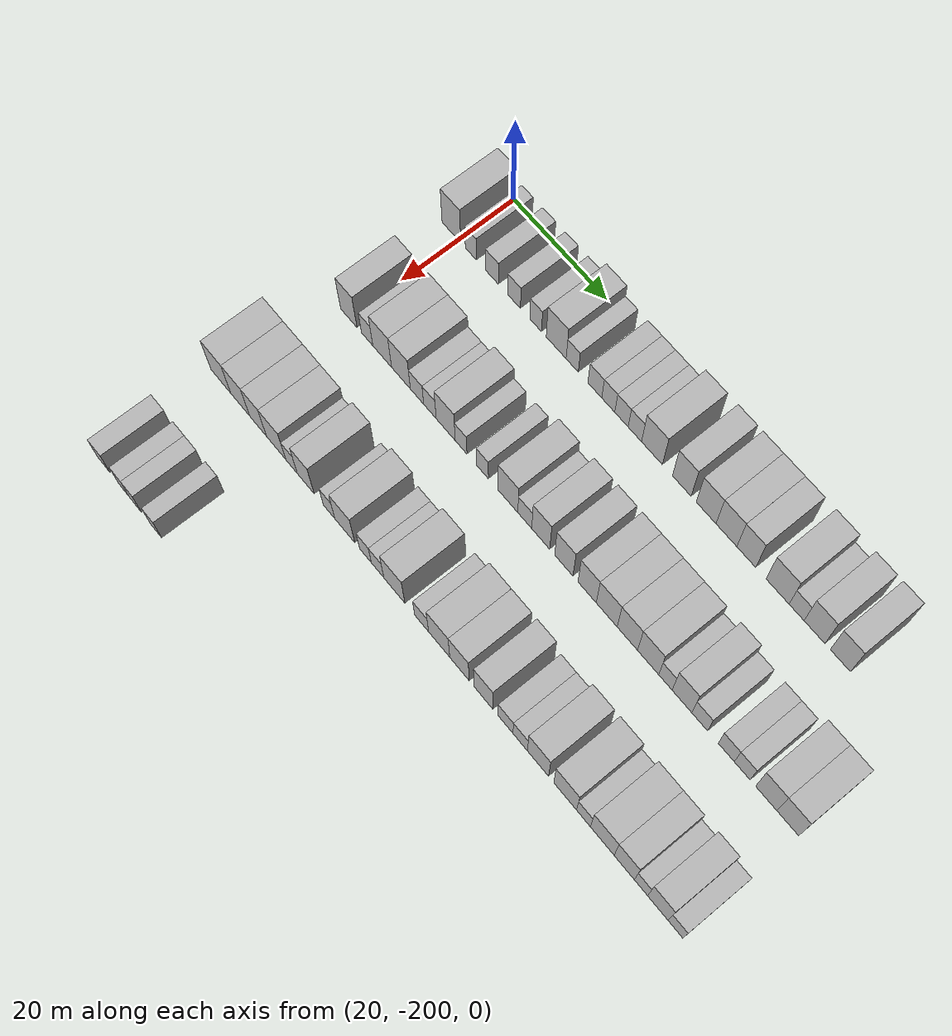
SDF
<sdf version="1.6">
 <world name="default">
  <model name="building_37">
   <static>1</static>
   <pose>25.0000 -201.5024 0 0.000000 0.000000 0.000000</pose>
   <link name="link">
    <pose>0 0 4.50 0 0 0</pose>
    <collision name="collision"><geometry><box><size>10.0000 4.1393 9.0000</size></box></geometry></collision>
    <visual name="visual">
     <cast_shadows>0</cast_shadows>
     <geometry><box><size>10.0000 4.1393 9.0000</size></box></geometry>
     <material>
      <script>
       <uri>model://HANNAS_wall/materials/scripts</uri>
       <uri>model://HANNAS_wall/materials/textures</uri>
       <name>vrc/HANNAS_wall</name>
      </script>
     </material>
    </visual>
   </link>
  </model>
  <model name="building_38">
   <static>1</static>
   <pose>25.0000 -197.2119 0 0.000000 0.000000 0.000000</pose>
   <link name="link">
    <pose>0 0 3.00 0 0 0</pose>
    <collision name="collision"><geometry><box><size>10.0000 2.4417 6.0000</size></box></geometry></collision>
    <visual name="visual">
     <cast_shadows>0</cast_shadows>
     <geometry><box><size>10.0000 2.4417 6.0000</size></box></geometry>
     <material>
      <script>
       <uri>model://HANNAS_wall/materials/scripts</uri>
       <uri>model://HANNAS_wall/materials/textures</uri>
       <name>vrc/HANNAS_wall</name>
      </script>
     </material>
    </visual>
   </link>
  </model>
  <model name="building_39">
   <static>1</static>
   <pose>25.0000 -192.6074 0 0.000000 0.000000 0.000000</pose>
   <link name="link">
    <pose>0 0 3.00 0 0 0</pose>
    <collision name="collision"><geometry><box><size>10.0000 2.7673 6.0000</size></box></geometry></collision>
    <visual name="visual">
     <cast_shadows>0</cast_shadows>
     <geometry><box><size>10.0000 2.7673 6.0000</size></box></geometry>
     <material>
      <script>
       <uri>model://HANNAS_wall/materials/scripts</uri>
       <uri>model://HANNAS_wall/materials/textures</uri>
       <name>vrc/HANNAS_wall</name>
      </script>
     </material>
    </visual>
   </link>
  </model>
  <model name="building_40">
   <static>1</static>
   <pose>25.0000 -187.8498 0 0.000000 0.000000 0.000000</pose>
   <link name="link">
    <pose>0 0 3.00 0 0 0</pose>
    <collision name="collision"><geometry><box><size>10.0000 2.7479 6.0000</size></box></geometry></collision>
    <visual name="visual">
     <cast_shadows>0</cast_shadows>
     <geometry><box><size>10.0000 2.7479 6.0000</size></box></geometry>
     <material>
      <script>
       <uri>model://HANNAS_wall/materials/scripts</uri>
       <uri>model://HANNAS_wall/materials/textures</uri>
       <name>vrc/HANNAS_wall</name>
      </script>
     </material>
    </visual>
   </link>
  </model>
  <model name="building_41">
   <static>1</static>
   <pose>25.0000 -183.2343 0 0.000000 0.000000 0.000000</pose>
   <link name="link">
    <pose>0 0 3.00 0 0 0</pose>
    <collision name="collision"><geometry><box><size>10.0000 2.4830 6.0000</size></box></geometry></collision>
    <visual name="visual">
     <cast_shadows>0</cast_shadows>
     <geometry><box><size>10.0000 2.4830 6.0000</size></box></geometry>
     <material>
      <script>
       <uri>model://HANNAS_wall/materials/scripts</uri>
       <uri>model://HANNAS_wall/materials/textures</uri>
       <name>vrc/HANNAS_wall</name>
      </script>
     </material>
    </visual>
   </link>
  </model>
  <model name="building_42">
   <static>1</static>
   <pose>25.0000 -178.8982 0 0.000000 0.000000 0.000000</pose>
   <link name="link">
    <pose>0 0 4.50 0 0 0</pose>
    <collision name="collision"><geometry><box><size>10.0000 4.1893 9.0000</size></box></geometry></collision>
    <visual name="visual">
     <cast_shadows>0</cast_shadows>
     <geometry><box><size>10.0000 4.1893 9.0000</size></box></geometry>
     <material>
      <script>
       <uri>model://HANNAS_wall/materials/scripts</uri>
       <uri>model://HANNAS_wall/materials/textures</uri>
       <name>vrc/HANNAS_wall</name>
      </script>
     </material>
    </visual>
   </link>
  </model>
  <model name="building_43">
   <static>1</static>
   <pose>25.0000 -175.5321 0 0.000000 0.000000 0.000000</pose>
   <link name="link">
    <pose>0 0 3.00 0 0 0</pose>
    <collision name="collision"><geometry><box><size>10.0000 2.5427 6.0000</size></box></geometry></collision>
    <visual name="visual">
     <cast_shadows>0</cast_shadows>
     <geometry><box><size>10.0000 2.5427 6.0000</size></box></geometry>
     <material>
      <script>
       <uri>model://HANNAS_wall/materials/scripts</uri>
       <uri>model://HANNAS_wall/materials/textures</uri>
       <name>vrc/HANNAS_wall</name>
      </script>
     </material>
    </visual>
   </link>
  </model>
  <model name="building_44">
   <static>1</static>
   <pose>25.0000 -170.8258 0 0.000000 0.000000 0.000000</pose>
   <link name="link">
    <pose>0 0 3.00 0 0 0</pose>
    <collision name="collision"><geometry><box><size>10.0000 2.8700 6.0000</size></box></geometry></collision>
    <visual name="visual">
     <cast_shadows>0</cast_shadows>
     <geometry><box><size>10.0000 2.8700 6.0000</size></box></geometry>
     <material>
      <script>
       <uri>model://HANNAS_wall/materials/scripts</uri>
       <uri>model://HANNAS_wall/materials/textures</uri>
       <name>vrc/HANNAS_wall</name>
      </script>
     </material>
    </visual>
   </link>
  </model>
  <model name="building_45">
   <static>1</static>
   <pose>25.0000 -168.0560 0 0.000000 0.000000 0.000000</pose>
   <link name="link">
    <pose>0 0 3.00 0 0 0</pose>
    <collision name="collision"><geometry><box><size>10.0000 2.6695 6.0000</size></box></geometry></collision>
    <visual name="visual">
     <cast_shadows>0</cast_shadows>
     <geometry><box><size>10.0000 2.6695 6.0000</size></box></geometry>
     <material>
      <script>
       <uri>model://HANNAS_wall/materials/scripts</uri>
       <uri>model://HANNAS_wall/materials/textures</uri>
       <name>vrc/HANNAS_wall</name>
      </script>
     </material>
    </visual>
   </link>
  </model>
  <model name="building_46">
   <static>1</static>
   <pose>25.0000 -165.3551 0 0.000000 0.000000 0.000000</pose>
   <link name="link">
    <pose>0 0 3.00 0 0 0</pose>
    <collision name="collision"><geometry><box><size>10.0000 2.7324 6.0000</size></box></geometry></collision>
    <visual name="visual">
     <cast_shadows>0</cast_shadows>
     <geometry><box><size>10.0000 2.7324 6.0000</size></box></geometry>
     <material>
      <script>
       <uri>model://HANNAS_wall/materials/scripts</uri>
       <uri>model://HANNAS_wall/materials/textures</uri>
       <name>vrc/HANNAS_wall</name>
      </script>
     </material>
    </visual>
   </link>
  </model>
  <model name="building_47">
   <static>1</static>
   <pose>25.0000 -162.6343 0 0.000000 0.000000 0.000000</pose>
   <link name="link">
    <pose>0 0 3.00 0 0 0</pose>
    <collision name="collision"><geometry><box><size>10.0000 2.7092 6.0000</size></box></geometry></collision>
    <visual name="visual">
     <cast_shadows>0</cast_shadows>
     <geometry><box><size>10.0000 2.7092 6.0000</size></box></geometry>
     <material>
      <script>
       <uri>model://HANNAS_wall/materials/scripts</uri>
       <uri>model://HANNAS_wall/materials/textures</uri>
       <name>vrc/HANNAS_wall</name>
      </script>
     </material>
    </visual>
   </link>
  </model>
  <model name="building_48">
   <static>1</static>
   <pose>25.0000 -159.1742 0 0.000000 0.000000 0.000000</pose>
   <link name="link">
    <pose>0 0 4.50 0 0 0</pose>
    <collision name="collision"><geometry><box><size>10.0000 4.2110 9.0000</size></box></geometry></collision>
    <visual name="visual">
     <cast_shadows>0</cast_shadows>
     <geometry><box><size>10.0000 4.2110 9.0000</size></box></geometry>
     <material>
      <script>
       <uri>model://HANNAS_wall/materials/scripts</uri>
       <uri>model://HANNAS_wall/materials/textures</uri>
       <name>vrc/HANNAS_wall</name>
      </script>
     </material>
    </visual>
   </link>
  </model>
  <model name="building_49">
   <static>1</static>
   <pose>25.0000 -153.2117 0 0.000000 0.000000 0.000000</pose>
   <link name="link">
    <pose>0 0 4.50 0 0 0</pose>
    <collision name="collision"><geometry><box><size>10.0000 3.7140 9.0000</size></box></geometry></collision>
    <visual name="visual">
     <cast_shadows>0</cast_shadows>
     <geometry><box><size>10.0000 3.7140 9.0000</size></box></geometry>
     <material>
      <script>
       <uri>model://HANNAS_wall/materials/scripts</uri>
       <uri>model://HANNAS_wall/materials/textures</uri>
       <name>vrc/HANNAS_wall</name>
      </script>
     </material>
    </visual>
   </link>
  </model>
  <model name="building_50">
   <static>1</static>
   <pose>25.0000 -148.4113 0 0.000000 0.000000 0.000000</pose>
   <link name="link">
    <pose>0 0 4.50 0 0 0</pose>
    <collision name="collision"><geometry><box><size>10.0000 3.8868 9.0000</size></box></geometry></collision>
    <visual name="visual">
     <cast_shadows>0</cast_shadows>
     <geometry><box><size>10.0000 3.8868 9.0000</size></box></geometry>
     <material>
      <script>
       <uri>model://HANNAS_wall/materials/scripts</uri>
       <uri>model://HANNAS_wall/materials/textures</uri>
       <name>vrc/HANNAS_wall</name>
      </script>
     </material>
    </visual>
   </link>
  </model>
  <model name="building_51">
   <static>1</static>
   <pose>25.0000 -144.4480 0 0.000000 0.000000 0.000000</pose>
   <link name="link">
    <pose>0 0 4.50 0 0 0</pose>
    <collision name="collision"><geometry><box><size>10.0000 4.0399 9.0000</size></box></geometry></collision>
    <visual name="visual">
     <cast_shadows>0</cast_shadows>
     <geometry><box><size>10.0000 4.0399 9.0000</size></box></geometry>
     <material>
      <script>
       <uri>model://HANNAS_wall/materials/scripts</uri>
       <uri>model://HANNAS_wall/materials/textures</uri>
       <name>vrc/HANNAS_wall</name>
      </script>
     </material>
    </visual>
   </link>
  </model>
  <model name="building_52">
   <static>1</static>
   <pose>25.0000 -140.6009 0 0.000000 0.000000 0.000000</pose>
   <link name="link">
    <pose>0 0 4.50 0 0 0</pose>
    <collision name="collision"><geometry><box><size>10.0000 3.6542 9.0000</size></box></geometry></collision>
    <visual name="visual">
     <cast_shadows>0</cast_shadows>
     <geometry><box><size>10.0000 3.6542 9.0000</size></box></geometry>
     <material>
      <script>
       <uri>model://HANNAS_wall/materials/scripts</uri>
       <uri>model://HANNAS_wall/materials/textures</uri>
       <name>vrc/HANNAS_wall</name>
      </script>
     </material>
    </visual>
   </link>
  </model>
  <model name="building_53">
   <static>1</static>
   <pose>25.0000 -134.5969 0 0.000000 0.000000 0.000000</pose>
   <link name="link">
    <pose>0 0 4.50 0 0 0</pose>
    <collision name="collision"><geometry><box><size>10.0000 4.3539 9.0000</size></box></geometry></collision>
    <visual name="visual">
     <cast_shadows>0</cast_shadows>
     <geometry><box><size>10.0000 4.3539 9.0000</size></box></geometry>
     <material>
      <script>
       <uri>model://HANNAS_wall/materials/scripts</uri>
       <uri>model://HANNAS_wall/materials/textures</uri>
       <name>vrc/HANNAS_wall</name>
      </script>
     </material>
    </visual>
   </link>
  </model>
  <model name="building_54">
   <static>1</static>
   <pose>25.0000 -131.0088 0 0.000000 0.000000 0.000000</pose>
   <link name="link">
    <pose>0 0 3.00 0 0 0</pose>
    <collision name="collision"><geometry><box><size>10.0000 2.8224 6.0000</size></box></geometry></collision>
    <visual name="visual">
     <cast_shadows>0</cast_shadows>
     <geometry><box><size>10.0000 2.8224 6.0000</size></box></geometry>
     <material>
      <script>
       <uri>model://HANNAS_wall/materials/scripts</uri>
       <uri>model://HANNAS_wall/materials/textures</uri>
       <name>vrc/HANNAS_wall</name>
      </script>
     </material>
    </visual>
   </link>
  </model>
  <model name="building_55">
   <static>1</static>
   <pose>25.0000 -127.6509 0 0.000000 0.000000 0.000000</pose>
   <link name="link">
    <pose>0 0 4.50 0 0 0</pose>
    <collision name="collision"><geometry><box><size>10.0000 3.8932 9.0000</size></box></geometry></collision>
    <visual name="visual">
     <cast_shadows>0</cast_shadows>
     <geometry><box><size>10.0000 3.8932 9.0000</size></box></geometry>
     <material>
      <script>
       <uri>model://HANNAS_wall/materials/scripts</uri>
       <uri>model://HANNAS_wall/materials/textures</uri>
       <name>vrc/HANNAS_wall</name>
      </script>
     </material>
    </visual>
   </link>
  </model>
  <model name="building_56">
   <static>1</static>
   <pose>25.0000 -122.8421 0 0.000000 0.000000 0.000000</pose>
   <link name="link">
    <pose>0 0 4.50 0 0 0</pose>
    <collision name="collision"><geometry><box><size>10.0000 3.7245 9.0000</size></box></geometry></collision>
    <visual name="visual">
     <cast_shadows>0</cast_shadows>
     <geometry><box><size>10.0000 3.7245 9.0000</size></box></geometry>
     <material>
      <script>
       <uri>model://HANNAS_wall/materials/scripts</uri>
       <uri>model://HANNAS_wall/materials/textures</uri>
       <name>vrc/HANNAS_wall</name>
      </script>
     </material>
    </visual>
   </link>
  </model>
  <model name="building_195">
   <static>1</static>
   <pose>44.0000 -200.0760 0 0.000000 0.000000 0.000000</pose>
   <link name="link">
    <pose>0 0 4.50 0 0 0</pose>
    <collision name="collision"><geometry><box><size>10.0000 3.6428 9.0000</size></box></geometry></collision>
    <visual name="visual">
     <cast_shadows>0</cast_shadows>
     <geometry><box><size>10.0000 3.6428 9.0000</size></box></geometry>
     <material>
      <script>
       <uri>model://HANNAS_wall/materials/scripts</uri>
       <uri>model://HANNAS_wall/materials/textures</uri>
       <name>vrc/HANNAS_wall</name>
      </script>
     </material>
    </visual>
   </link>
  </model>
  <model name="building_196">
   <static>1</static>
   <pose>44.0000 -196.0060 0 0.000000 0.000000 0.000000</pose>
   <link name="link">
    <pose>0 0 3.00 0 0 0</pose>
    <collision name="collision"><geometry><box><size>10.0000 2.4972 6.0000</size></box></geometry></collision>
    <visual name="visual">
     <cast_shadows>0</cast_shadows>
     <geometry><box><size>10.0000 2.4972 6.0000</size></box></geometry>
     <material>
      <script>
       <uri>model://HANNAS_wall/materials/scripts</uri>
       <uri>model://HANNAS_wall/materials/textures</uri>
       <name>vrc/HANNAS_wall</name>
      </script>
     </material>
    </visual>
   </link>
  </model>
  <model name="building_197">
   <static>1</static>
   <pose>44.0000 -192.6982 0 0.000000 0.000000 0.000000</pose>
   <link name="link">
    <pose>0 0 4.50 0 0 0</pose>
    <collision name="collision"><geometry><box><size>10.0000 4.1184 9.0000</size></box></geometry></collision>
    <visual name="visual">
     <cast_shadows>0</cast_shadows>
     <geometry><box><size>10.0000 4.1184 9.0000</size></box></geometry>
     <material>
      <script>
       <uri>model://HANNAS_wall/materials/scripts</uri>
       <uri>model://HANNAS_wall/materials/textures</uri>
       <name>vrc/HANNAS_wall</name>
      </script>
     </material>
    </visual>
   </link>
  </model>
  <model name="building_198">
   <static>1</static>
   <pose>44.0000 -188.6003 0 0.000000 0.000000 0.000000</pose>
   <link name="link">
    <pose>0 0 4.50 0 0 0</pose>
    <collision name="collision"><geometry><box><size>10.0000 4.0775 9.0000</size></box></geometry></collision>
    <visual name="visual">
     <cast_shadows>0</cast_shadows>
     <geometry><box><size>10.0000 4.0775 9.0000</size></box></geometry>
     <material>
      <script>
       <uri>model://HANNAS_wall/materials/scripts</uri>
       <uri>model://HANNAS_wall/materials/textures</uri>
       <name>vrc/HANNAS_wall</name>
      </script>
     </material>
    </visual>
   </link>
  </model>
  <model name="building_199">
   <static>1</static>
   <pose>44.0000 -185.1301 0 0.000000 0.000000 0.000000</pose>
   <link name="link">
    <pose>0 0 3.00 0 0 0</pose>
    <collision name="collision"><geometry><box><size>10.0000 2.8630 6.0000</size></box></geometry></collision>
    <visual name="visual">
     <cast_shadows>0</cast_shadows>
     <geometry><box><size>10.0000 2.8630 6.0000</size></box></geometry>
     <material>
      <script>
       <uri>model://HANNAS_wall/materials/scripts</uri>
       <uri>model://HANNAS_wall/materials/textures</uri>
       <name>vrc/HANNAS_wall</name>
      </script>
     </material>
    </visual>
   </link>
  </model>
  <model name="building_200">
   <static>1</static>
   <pose>44.0000 -182.3581 0 0.000000 0.000000 0.000000</pose>
   <link name="link">
    <pose>0 0 3.00 0 0 0</pose>
    <collision name="collision"><geometry><box><size>10.0000 2.6811 6.0000</size></box></geometry></collision>
    <visual name="visual">
     <cast_shadows>0</cast_shadows>
     <geometry><box><size>10.0000 2.6811 6.0000</size></box></geometry>
     <material>
      <script>
       <uri>model://HANNAS_wall/materials/scripts</uri>
       <uri>model://HANNAS_wall/materials/textures</uri>
       <name>vrc/HANNAS_wall</name>
      </script>
     </material>
    </visual>
   </link>
  </model>
  <model name="building_201">
   <static>1</static>
   <pose>44.0000 -178.9939 0 0.000000 0.000000 0.000000</pose>
   <link name="link">
    <pose>0 0 4.50 0 0 0</pose>
    <collision name="collision"><geometry><box><size>10.0000 4.0472 9.0000</size></box></geometry></collision>
    <visual name="visual">
     <cast_shadows>0</cast_shadows>
     <geometry><box><size>10.0000 4.0472 9.0000</size></box></geometry>
     <material>
      <script>
       <uri>model://HANNAS_wall/materials/scripts</uri>
       <uri>model://HANNAS_wall/materials/textures</uri>
       <name>vrc/HANNAS_wall</name>
      </script>
     </material>
    </visual>
   </link>
  </model>
  <model name="building_202">
   <static>1</static>
   <pose>44.0000 -175.7361 0 0.000000 0.000000 0.000000</pose>
   <link name="link">
    <pose>0 0 3.00 0 0 0</pose>
    <collision name="collision"><geometry><box><size>10.0000 2.4685 6.0000</size></box></geometry></collision>
    <visual name="visual">
     <cast_shadows>0</cast_shadows>
     <geometry><box><size>10.0000 2.4685 6.0000</size></box></geometry>
     <material>
      <script>
       <uri>model://HANNAS_wall/materials/scripts</uri>
       <uri>model://HANNAS_wall/materials/textures</uri>
       <name>vrc/HANNAS_wall</name>
      </script>
     </material>
    </visual>
   </link>
  </model>
  <model name="building_203">
   <static>1</static>
   <pose>44.0000 -171.2598 0 0.000000 0.000000 0.000000</pose>
   <link name="link">
    <pose>0 0 3.00 0 0 0</pose>
    <collision name="collision"><geometry><box><size>10.0000 2.4840 6.0000</size></box></geometry></collision>
    <visual name="visual">
     <cast_shadows>0</cast_shadows>
     <geometry><box><size>10.0000 2.4840 6.0000</size></box></geometry>
     <material>
      <script>
       <uri>model://HANNAS_wall/materials/scripts</uri>
       <uri>model://HANNAS_wall/materials/textures</uri>
       <name>vrc/HANNAS_wall</name>
      </script>
     </material>
    </visual>
   </link>
  </model>
  <model name="building_204">
   <static>1</static>
   <pose>44.0000 -165.9782 0 0.000000 0.000000 0.000000</pose>
   <link name="link">
    <pose>0 0 4.50 0 0 0</pose>
    <collision name="collision"><geometry><box><size>10.0000 4.0792 9.0000</size></box></geometry></collision>
    <visual name="visual">
     <cast_shadows>0</cast_shadows>
     <geometry><box><size>10.0000 4.0792 9.0000</size></box></geometry>
     <material>
      <script>
       <uri>model://HANNAS_wall/materials/scripts</uri>
       <uri>model://HANNAS_wall/materials/textures</uri>
       <name>vrc/HANNAS_wall</name>
      </script>
     </material>
    </visual>
   </link>
  </model>
  <model name="building_205">
   <static>1</static>
   <pose>44.0000 -162.5200 0 0.000000 0.000000 0.000000</pose>
   <link name="link">
    <pose>0 0 3.00 0 0 0</pose>
    <collision name="collision"><geometry><box><size>10.0000 2.8373 6.0000</size></box></geometry></collision>
    <visual name="visual">
     <cast_shadows>0</cast_shadows>
     <geometry><box><size>10.0000 2.8373 6.0000</size></box></geometry>
     <material>
      <script>
       <uri>model://HANNAS_wall/materials/scripts</uri>
       <uri>model://HANNAS_wall/materials/textures</uri>
       <name>vrc/HANNAS_wall</name>
      </script>
     </material>
    </visual>
   </link>
  </model>
  <model name="building_206">
   <static>1</static>
   <pose>44.0000 -159.2811 0 0.000000 0.000000 0.000000</pose>
   <link name="link">
    <pose>0 0 4.50 0 0 0</pose>
    <collision name="collision"><geometry><box><size>10.0000 3.6404 9.0000</size></box></geometry></collision>
    <visual name="visual">
     <cast_shadows>0</cast_shadows>
     <geometry><box><size>10.0000 3.6404 9.0000</size></box></geometry>
     <material>
      <script>
       <uri>model://HANNAS_wall/materials/scripts</uri>
       <uri>model://HANNAS_wall/materials/textures</uri>
       <name>vrc/HANNAS_wall</name>
      </script>
     </material>
    </visual>
   </link>
  </model>
  <model name="building_207">
   <static>1</static>
   <pose>44.0000 -154.6226 0 0.000000 0.000000 0.000000</pose>
   <link name="link">
    <pose>0 0 4.50 0 0 0</pose>
    <collision name="collision"><geometry><box><size>10.0000 3.6765 9.0000</size></box></geometry></collision>
    <visual name="visual">
     <cast_shadows>0</cast_shadows>
     <geometry><box><size>10.0000 3.6765 9.0000</size></box></geometry>
     <material>
      <script>
       <uri>model://HANNAS_wall/materials/scripts</uri>
       <uri>model://HANNAS_wall/materials/textures</uri>
       <name>vrc/HANNAS_wall</name>
      </script>
     </material>
    </visual>
   </link>
  </model>
  <model name="building_208">
   <static>1</static>
   <pose>44.0000 -149.9743 0 0.000000 0.000000 0.000000</pose>
   <link name="link">
    <pose>0 0 4.50 0 0 0</pose>
    <collision name="collision"><geometry><box><size>10.0000 3.6202 9.0000</size></box></geometry></collision>
    <visual name="visual">
     <cast_shadows>0</cast_shadows>
     <geometry><box><size>10.0000 3.6202 9.0000</size></box></geometry>
     <material>
      <script>
       <uri>model://HANNAS_wall/materials/scripts</uri>
       <uri>model://HANNAS_wall/materials/textures</uri>
       <name>vrc/HANNAS_wall</name>
      </script>
     </material>
    </visual>
   </link>
  </model>
  <model name="building_209">
   <static>1</static>
   <pose>44.0000 -146.1048 0 0.000000 0.000000 0.000000</pose>
   <link name="link">
    <pose>0 0 4.50 0 0 0</pose>
    <collision name="collision"><geometry><box><size>10.0000 4.1187 9.0000</size></box></geometry></collision>
    <visual name="visual">
     <cast_shadows>0</cast_shadows>
     <geometry><box><size>10.0000 4.1187 9.0000</size></box></geometry>
     <material>
      <script>
       <uri>model://HANNAS_wall/materials/scripts</uri>
       <uri>model://HANNAS_wall/materials/textures</uri>
       <name>vrc/HANNAS_wall</name>
      </script>
     </material>
    </visual>
   </link>
  </model>
  <model name="building_210">
   <static>1</static>
   <pose>44.0000 -142.0576 0 0.000000 0.000000 0.000000</pose>
   <link name="link">
    <pose>0 0 4.50 0 0 0</pose>
    <collision name="collision"><geometry><box><size>10.0000 3.9758 9.0000</size></box></geometry></collision>
    <visual name="visual">
     <cast_shadows>0</cast_shadows>
     <geometry><box><size>10.0000 3.9758 9.0000</size></box></geometry>
     <material>
      <script>
       <uri>model://HANNAS_wall/materials/scripts</uri>
       <uri>model://HANNAS_wall/materials/textures</uri>
       <name>vrc/HANNAS_wall</name>
      </script>
     </material>
    </visual>
   </link>
  </model>
  <model name="building_211">
   <static>1</static>
   <pose>44.0000 -138.0288 0 0.000000 0.000000 0.000000</pose>
   <link name="link">
    <pose>0 0 4.50 0 0 0</pose>
    <collision name="collision"><geometry><box><size>10.0000 4.0818 9.0000</size></box></geometry></collision>
    <visual name="visual">
     <cast_shadows>0</cast_shadows>
     <geometry><box><size>10.0000 4.0818 9.0000</size></box></geometry>
     <material>
      <script>
       <uri>model://HANNAS_wall/materials/scripts</uri>
       <uri>model://HANNAS_wall/materials/textures</uri>
       <name>vrc/HANNAS_wall</name>
      </script>
     </material>
    </visual>
   </link>
  </model>
  <model name="building_212">
   <static>1</static>
   <pose>44.0000 -134.7015 0 0.000000 0.000000 0.000000</pose>
   <link name="link">
    <pose>0 0 3.00 0 0 0</pose>
    <collision name="collision"><geometry><box><size>10.0000 2.5728 6.0000</size></box></geometry></collision>
    <visual name="visual">
     <cast_shadows>0</cast_shadows>
     <geometry><box><size>10.0000 2.5728 6.0000</size></box></geometry>
     <material>
      <script>
       <uri>model://HANNAS_wall/materials/scripts</uri>
       <uri>model://HANNAS_wall/materials/textures</uri>
       <name>vrc/HANNAS_wall</name>
      </script>
     </material>
    </visual>
   </link>
  </model>
  <model name="building_213">
   <static>1</static>
   <pose>44.0000 -131.5415 0 0.000000 0.000000 0.000000</pose>
   <link name="link">
    <pose>0 0 4.50 0 0 0</pose>
    <collision name="collision"><geometry><box><size>10.0000 3.7473 9.0000</size></box></geometry></collision>
    <visual name="visual">
     <cast_shadows>0</cast_shadows>
     <geometry><box><size>10.0000 3.7473 9.0000</size></box></geometry>
     <material>
      <script>
       <uri>model://HANNAS_wall/materials/scripts</uri>
       <uri>model://HANNAS_wall/materials/textures</uri>
       <name>vrc/HANNAS_wall</name>
      </script>
     </material>
    </visual>
   </link>
  </model>
  <model name="building_214">
   <static>1</static>
   <pose>44.0000 -128.1887 0 0.000000 0.000000 0.000000</pose>
   <link name="link">
    <pose>0 0 3.00 0 0 0</pose>
    <collision name="collision"><geometry><box><size>10.0000 2.9583 6.0000</size></box></geometry></collision>
    <visual name="visual">
     <cast_shadows>0</cast_shadows>
     <geometry><box><size>10.0000 2.9583 6.0000</size></box></geometry>
     <material>
      <script>
       <uri>model://HANNAS_wall/materials/scripts</uri>
       <uri>model://HANNAS_wall/materials/textures</uri>
       <name>vrc/HANNAS_wall</name>
      </script>
     </material>
    </visual>
   </link>
  </model>
  <model name="building_215">
   <static>1</static>
   <pose>44.0000 -123.2134 0 0.000000 0.000000 0.000000</pose>
   <link name="link">
    <pose>0 0 3.00 0 0 0</pose>
    <collision name="collision"><geometry><box><size>10.0000 2.9922 6.0000</size></box></geometry></collision>
    <visual name="visual">
     <cast_shadows>0</cast_shadows>
     <geometry><box><size>10.0000 2.9922 6.0000</size></box></geometry>
     <material>
      <script>
       <uri>model://HANNAS_wall/materials/scripts</uri>
       <uri>model://HANNAS_wall/materials/textures</uri>
       <name>vrc/HANNAS_wall</name>
      </script>
     </material>
    </visual>
   </link>
  </model>
  <model name="building_216">
   <static>1</static>
   <pose>44.0000 -120.2601 0 0.000000 0.000000 0.000000</pose>
   <link name="link">
    <pose>0 0 3.00 0 0 0</pose>
    <collision name="collision"><geometry><box><size>10.0000 2.9144 6.0000</size></box></geometry></collision>
    <visual name="visual">
     <cast_shadows>0</cast_shadows>
     <geometry><box><size>10.0000 2.9144 6.0000</size></box></geometry>
     <material>
      <script>
       <uri>model://HANNAS_wall/materials/scripts</uri>
       <uri>model://HANNAS_wall/materials/textures</uri>
       <name>vrc/HANNAS_wall</name>
      </script>
     </material>
    </visual>
   </link>
  </model>
  <model name="building_217">
   <static>1</static>
   <pose>44.0000 -115.8618 0 0.000000 0.000000 0.000000</pose>
   <link name="link">
    <pose>0 0 4.50 0 0 0</pose>
    <collision name="collision"><geometry><box><size>10.0000 3.8823 9.0000</size></box></geometry></collision>
    <visual name="visual">
     <cast_shadows>0</cast_shadows>
     <geometry><box><size>10.0000 3.8823 9.0000</size></box></geometry>
     <material>
      <script>
       <uri>model://HANNAS_wall/materials/scripts</uri>
       <uri>model://HANNAS_wall/materials/textures</uri>
       <name>vrc/HANNAS_wall</name>
      </script>
     </material>
    </visual>
   </link>
  </model>
  <model name="building_218">
   <static>1</static>
   <pose>44.0000 -111.9395 0 0.000000 0.000000 0.000000</pose>
   <link name="link">
    <pose>0 0 4.50 0 0 0</pose>
    <collision name="collision"><geometry><box><size>10.0000 3.9622 9.0000</size></box></geometry></collision>
    <visual name="visual">
     <cast_shadows>0</cast_shadows>
     <geometry><box><size>10.0000 3.9622 9.0000</size></box></geometry>
     <material>
      <script>
       <uri>model://HANNAS_wall/materials/scripts</uri>
       <uri>model://HANNAS_wall/materials/textures</uri>
       <name>vrc/HANNAS_wall</name>
      </script>
     </material>
    </visual>
   </link>
  </model>
  <model name="building_363">
   <static>1</static>
   <pose>63.0000 -203.4649 0 0.000000 0.000000 0.000000</pose>
   <link name="link">
    <pose>0 0 4.50 0 0 0</pose>
    <collision name="collision"><geometry><box><size>10.0000 4.4972 9.0000</size></box></geometry></collision>
    <visual name="visual">
     <cast_shadows>0</cast_shadows>
     <geometry><box><size>10.0000 4.4972 9.0000</size></box></geometry>
     <material>
      <script>
       <uri>model://HANNAS_wall/materials/scripts</uri>
       <uri>model://HANNAS_wall/materials/textures</uri>
       <name>vrc/HANNAS_wall</name>
      </script>
     </material>
    </visual>
   </link>
  </model>
  <model name="building_364">
   <static>1</static>
   <pose>63.0000 -199.0913 0 0.000000 0.000000 0.000000</pose>
   <link name="link">
    <pose>0 0 4.50 0 0 0</pose>
    <collision name="collision"><geometry><box><size>10.0000 4.2500 9.0000</size></box></geometry></collision>
    <visual name="visual">
     <cast_shadows>0</cast_shadows>
     <geometry><box><size>10.0000 4.2500 9.0000</size></box></geometry>
     <material>
      <script>
       <uri>model://HANNAS_wall/materials/scripts</uri>
       <uri>model://HANNAS_wall/materials/textures</uri>
       <name>vrc/HANNAS_wall</name>
      </script>
     </material>
    </visual>
   </link>
  </model>
  <model name="building_365">
   <static>1</static>
   <pose>63.0000 -195.0927 0 0.000000 0.000000 0.000000</pose>
   <link name="link">
    <pose>0 0 4.50 0 0 0</pose>
    <collision name="collision"><geometry><box><size>10.0000 3.7471 9.0000</size></box></geometry></collision>
    <visual name="visual">
     <cast_shadows>0</cast_shadows>
     <geometry><box><size>10.0000 3.7471 9.0000</size></box></geometry>
     <material>
      <script>
       <uri>model://HANNAS_wall/materials/scripts</uri>
       <uri>model://HANNAS_wall/materials/textures</uri>
       <name>vrc/HANNAS_wall</name>
      </script>
     </material>
    </visual>
   </link>
  </model>
  <model name="building_366">
   <static>1</static>
   <pose>63.0000 -191.0882 0 0.000000 0.000000 0.000000</pose>
   <link name="link">
    <pose>0 0 4.50 0 0 0</pose>
    <collision name="collision"><geometry><box><size>10.0000 4.2619 9.0000</size></box></geometry></collision>
    <visual name="visual">
     <cast_shadows>0</cast_shadows>
     <geometry><box><size>10.0000 4.2619 9.0000</size></box></geometry>
     <material>
      <script>
       <uri>model://HANNAS_wall/materials/scripts</uri>
       <uri>model://HANNAS_wall/materials/textures</uri>
       <name>vrc/HANNAS_wall</name>
      </script>
     </material>
    </visual>
   </link>
  </model>
  <model name="building_367">
   <static>1</static>
   <pose>63.0000 -187.7079 0 0.000000 0.000000 0.000000</pose>
   <link name="link">
    <pose>0 0 3.00 0 0 0</pose>
    <collision name="collision"><geometry><box><size>10.0000 2.4987 6.0000</size></box></geometry></collision>
    <visual name="visual">
     <cast_shadows>0</cast_shadows>
     <geometry><box><size>10.0000 2.4987 6.0000</size></box></geometry>
     <material>
      <script>
       <uri>model://HANNAS_wall/materials/scripts</uri>
       <uri>model://HANNAS_wall/materials/textures</uri>
       <name>vrc/HANNAS_wall</name>
      </script>
     </material>
    </visual>
   </link>
  </model>
  <model name="building_368">
   <static>1</static>
   <pose>63.0000 -184.6217 0 0.000000 0.000000 0.000000</pose>
   <link name="link">
    <pose>0 0 4.50 0 0 0</pose>
    <collision name="collision"><geometry><box><size>10.0000 3.6737 9.0000</size></box></geometry></collision>
    <visual name="visual">
     <cast_shadows>0</cast_shadows>
     <geometry><box><size>10.0000 3.6737 9.0000</size></box></geometry>
     <material>
      <script>
       <uri>model://HANNAS_wall/materials/scripts</uri>
       <uri>model://HANNAS_wall/materials/textures</uri>
       <name>vrc/HANNAS_wall</name>
      </script>
     </material>
    </visual>
   </link>
  </model>
  <model name="building_369">
   <static>1</static>
   <pose>63.0000 -179.5527 0 0.000000 0.000000 0.000000</pose>
   <link name="link">
    <pose>0 0 3.00 0 0 0</pose>
    <collision name="collision"><geometry><box><size>10.0000 2.4643 6.0000</size></box></geometry></collision>
    <visual name="visual">
     <cast_shadows>0</cast_shadows>
     <geometry><box><size>10.0000 2.4643 6.0000</size></box></geometry>
     <material>
      <script>
       <uri>model://HANNAS_wall/materials/scripts</uri>
       <uri>model://HANNAS_wall/materials/textures</uri>
       <name>vrc/HANNAS_wall</name>
      </script>
     </material>
    </visual>
   </link>
  </model>
  <model name="building_370">
   <static>1</static>
   <pose>63.0000 -176.2014 0 0.000000 0.000000 0.000000</pose>
   <link name="link">
    <pose>0 0 4.50 0 0 0</pose>
    <collision name="collision"><geometry><box><size>10.0000 4.2383 9.0000</size></box></geometry></collision>
    <visual name="visual">
     <cast_shadows>0</cast_shadows>
     <geometry><box><size>10.0000 4.2383 9.0000</size></box></geometry>
     <material>
      <script>
       <uri>model://HANNAS_wall/materials/scripts</uri>
       <uri>model://HANNAS_wall/materials/textures</uri>
       <name>vrc/HANNAS_wall</name>
      </script>
     </material>
    </visual>
   </link>
  </model>
  <model name="building_371">
   <static>1</static>
   <pose>63.0000 -171.8192 0 0.000000 0.000000 0.000000</pose>
   <link name="link">
    <pose>0 0 3.00 0 0 0</pose>
    <collision name="collision"><geometry><box><size>10.0000 2.5260 6.0000</size></box></geometry></collision>
    <visual name="visual">
     <cast_shadows>0</cast_shadows>
     <geometry><box><size>10.0000 2.5260 6.0000</size></box></geometry>
     <material>
      <script>
       <uri>model://HANNAS_wall/materials/scripts</uri>
       <uri>model://HANNAS_wall/materials/textures</uri>
       <name>vrc/HANNAS_wall</name>
      </script>
     </material>
    </visual>
   </link>
  </model>
  <model name="building_372">
   <static>1</static>
   <pose>63.0000 -169.2502 0 0.000000 0.000000 0.000000</pose>
   <link name="link">
    <pose>0 0 3.00 0 0 0</pose>
    <collision name="collision"><geometry><box><size>10.0000 2.6121 6.0000</size></box></geometry></collision>
    <visual name="visual">
     <cast_shadows>0</cast_shadows>
     <geometry><box><size>10.0000 2.6121 6.0000</size></box></geometry>
     <material>
      <script>
       <uri>model://HANNAS_wall/materials/scripts</uri>
       <uri>model://HANNAS_wall/materials/textures</uri>
       <name>vrc/HANNAS_wall</name>
      </script>
     </material>
    </visual>
   </link>
  </model>
  <model name="building_373">
   <static>1</static>
   <pose>63.0000 -165.7601 0 0.000000 0.000000 0.000000</pose>
   <link name="link">
    <pose>0 0 4.50 0 0 0</pose>
    <collision name="collision"><geometry><box><size>10.0000 4.3682 9.0000</size></box></geometry></collision>
    <visual name="visual">
     <cast_shadows>0</cast_shadows>
     <geometry><box><size>10.0000 4.3682 9.0000</size></box></geometry>
     <material>
      <script>
       <uri>model://HANNAS_wall/materials/scripts</uri>
       <uri>model://HANNAS_wall/materials/textures</uri>
       <name>vrc/HANNAS_wall</name>
      </script>
     </material>
    </visual>
   </link>
  </model>
  <model name="building_374">
   <static>1</static>
   <pose>63.0000 -160.1378 0 0.000000 0.000000 0.000000</pose>
   <link name="link">
    <pose>0 0 3.00 0 0 0</pose>
    <collision name="collision"><geometry><box><size>10.0000 2.8765 6.0000</size></box></geometry></collision>
    <visual name="visual">
     <cast_shadows>0</cast_shadows>
     <geometry><box><size>10.0000 2.8765 6.0000</size></box></geometry>
     <material>
      <script>
       <uri>model://HANNAS_wall/materials/scripts</uri>
       <uri>model://HANNAS_wall/materials/textures</uri>
       <name>vrc/HANNAS_wall</name>
      </script>
     </material>
    </visual>
   </link>
  </model>
  <model name="building_375">
   <static>1</static>
   <pose>63.0000 -156.5475 0 0.000000 0.000000 0.000000</pose>
   <link name="link">
    <pose>0 0 4.50 0 0 0</pose>
    <collision name="collision"><geometry><box><size>10.0000 4.3040 9.0000</size></box></geometry></collision>
    <visual name="visual">
     <cast_shadows>0</cast_shadows>
     <geometry><box><size>10.0000 4.3040 9.0000</size></box></geometry>
     <material>
      <script>
       <uri>model://HANNAS_wall/materials/scripts</uri>
       <uri>model://HANNAS_wall/materials/textures</uri>
       <name>vrc/HANNAS_wall</name>
      </script>
     </material>
    </visual>
   </link>
  </model>
  <model name="building_376">
   <static>1</static>
   <pose>63.0000 -152.4324 0 0.000000 0.000000 0.000000</pose>
   <link name="link">
    <pose>0 0 4.50 0 0 0</pose>
    <collision name="collision"><geometry><box><size>10.0000 3.9261 9.0000</size></box></geometry></collision>
    <visual name="visual">
     <cast_shadows>0</cast_shadows>
     <geometry><box><size>10.0000 3.9261 9.0000</size></box></geometry>
     <material>
      <script>
       <uri>model://HANNAS_wall/materials/scripts</uri>
       <uri>model://HANNAS_wall/materials/textures</uri>
       <name>vrc/HANNAS_wall</name>
      </script>
     </material>
    </visual>
   </link>
  </model>
  <model name="building_377">
   <static>1</static>
   <pose>63.0000 -147.6120 0 0.000000 0.000000 0.000000</pose>
   <link name="link">
    <pose>0 0 4.50 0 0 0</pose>
    <collision name="collision"><geometry><box><size>10.0000 3.7146 9.0000</size></box></geometry></collision>
    <visual name="visual">
     <cast_shadows>0</cast_shadows>
     <geometry><box><size>10.0000 3.7146 9.0000</size></box></geometry>
     <material>
      <script>
       <uri>model://HANNAS_wall/materials/scripts</uri>
       <uri>model://HANNAS_wall/materials/textures</uri>
       <name>vrc/HANNAS_wall</name>
      </script>
     </material>
    </visual>
   </link>
  </model>
  <model name="building_378">
   <static>1</static>
   <pose>63.0000 -143.2774 0 0.000000 0.000000 0.000000</pose>
   <link name="link">
    <pose>0 0 3.00 0 0 0</pose>
    <collision name="collision"><geometry><box><size>10.0000 2.9547 6.0000</size></box></geometry></collision>
    <visual name="visual">
     <cast_shadows>0</cast_shadows>
     <geometry><box><size>10.0000 2.9547 6.0000</size></box></geometry>
     <material>
      <script>
       <uri>model://HANNAS_wall/materials/scripts</uri>
       <uri>model://HANNAS_wall/materials/textures</uri>
       <name>vrc/HANNAS_wall</name>
      </script>
     </material>
    </visual>
   </link>
  </model>
  <model name="building_379">
   <static>1</static>
   <pose>63.0000 -140.3823 0 0.000000 0.000000 0.000000</pose>
   <link name="link">
    <pose>0 0 3.00 0 0 0</pose>
    <collision name="collision"><geometry><box><size>10.0000 2.8355 6.0000</size></box></geometry></collision>
    <visual name="visual">
     <cast_shadows>0</cast_shadows>
     <geometry><box><size>10.0000 2.8355 6.0000</size></box></geometry>
     <material>
      <script>
       <uri>model://HANNAS_wall/materials/scripts</uri>
       <uri>model://HANNAS_wall/materials/textures</uri>
       <name>vrc/HANNAS_wall</name>
      </script>
     </material>
    </visual>
   </link>
  </model>
  <model name="building_380">
   <static>1</static>
   <pose>63.0000 -136.9223 0 0.000000 0.000000 0.000000</pose>
   <link name="link">
    <pose>0 0 4.50 0 0 0</pose>
    <collision name="collision"><geometry><box><size>10.0000 4.0844 9.0000</size></box></geometry></collision>
    <visual name="visual">
     <cast_shadows>0</cast_shadows>
     <geometry><box><size>10.0000 4.0844 9.0000</size></box></geometry>
     <material>
      <script>
       <uri>model://HANNAS_wall/materials/scripts</uri>
       <uri>model://HANNAS_wall/materials/textures</uri>
       <name>vrc/HANNAS_wall</name>
      </script>
     </material>
    </visual>
   </link>
  </model>
  <model name="building_381">
   <static>1</static>
   <pose>63.0000 -131.7004 0 0.000000 0.000000 0.000000</pose>
   <link name="link">
    <pose>0 0 4.50 0 0 0</pose>
    <collision name="collision"><geometry><box><size>10.0000 4.3595 9.0000</size></box></geometry></collision>
    <visual name="visual">
     <cast_shadows>0</cast_shadows>
     <geometry><box><size>10.0000 4.3595 9.0000</size></box></geometry>
     <material>
      <script>
       <uri>model://HANNAS_wall/materials/scripts</uri>
       <uri>model://HANNAS_wall/materials/textures</uri>
       <name>vrc/HANNAS_wall</name>
      </script>
     </material>
    </visual>
   </link>
  </model>
  <model name="building_382">
   <static>1</static>
   <pose>63.0000 -128.1974 0 0.000000 0.000000 0.000000</pose>
   <link name="link">
    <pose>0 0 3.00 0 0 0</pose>
    <collision name="collision"><geometry><box><size>10.0000 2.6465 6.0000</size></box></geometry></collision>
    <visual name="visual">
     <cast_shadows>0</cast_shadows>
     <geometry><box><size>10.0000 2.6465 6.0000</size></box></geometry>
     <material>
      <script>
       <uri>model://HANNAS_wall/materials/scripts</uri>
       <uri>model://HANNAS_wall/materials/textures</uri>
       <name>vrc/HANNAS_wall</name>
      </script>
     </material>
    </visual>
   </link>
  </model>
  <model name="building_383">
   <static>1</static>
   <pose>63.0000 -124.6428 0 0.000000 0.000000 0.000000</pose>
   <link name="link">
    <pose>0 0 4.50 0 0 0</pose>
    <collision name="collision"><geometry><box><size>10.0000 4.4626 9.0000</size></box></geometry></collision>
    <visual name="visual">
     <cast_shadows>0</cast_shadows>
     <geometry><box><size>10.0000 4.4626 9.0000</size></box></geometry>
     <material>
      <script>
       <uri>model://HANNAS_wall/materials/scripts</uri>
       <uri>model://HANNAS_wall/materials/textures</uri>
       <name>vrc/HANNAS_wall</name>
      </script>
     </material>
    </visual>
   </link>
  </model>
  <model name="building_384">
   <static>1</static>
   <pose>63.0000 -120.5254 0 0.000000 0.000000 0.000000</pose>
   <link name="link">
    <pose>0 0 4.50 0 0 0</pose>
    <collision name="collision"><geometry><box><size>10.0000 3.7722 9.0000</size></box></geometry></collision>
    <visual name="visual">
     <cast_shadows>0</cast_shadows>
     <geometry><box><size>10.0000 3.7722 9.0000</size></box></geometry>
     <material>
      <script>
       <uri>model://HANNAS_wall/materials/scripts</uri>
       <uri>model://HANNAS_wall/materials/textures</uri>
       <name>vrc/HANNAS_wall</name>
      </script>
     </material>
    </visual>
   </link>
  </model>
  <model name="building_385">
   <static>1</static>
   <pose>63.0000 -117.4165 0 0.000000 0.000000 0.000000</pose>
   <link name="link">
    <pose>0 0 3.00 0 0 0</pose>
    <collision name="collision"><geometry><box><size>10.0000 2.4457 6.0000</size></box></geometry></collision>
    <visual name="visual">
     <cast_shadows>0</cast_shadows>
     <geometry><box><size>10.0000 2.4457 6.0000</size></box></geometry>
     <material>
      <script>
       <uri>model://HANNAS_wall/materials/scripts</uri>
       <uri>model://HANNAS_wall/materials/textures</uri>
       <name>vrc/HANNAS_wall</name>
      </script>
     </material>
    </visual>
   </link>
  </model>
  <model name="building_386">
   <static>1</static>
   <pose>63.0000 -114.3168 0 0.000000 0.000000 0.000000</pose>
   <link name="link">
    <pose>0 0 4.50 0 0 0</pose>
    <collision name="collision"><geometry><box><size>10.0000 3.7537 9.0000</size></box></geometry></collision>
    <visual name="visual">
     <cast_shadows>0</cast_shadows>
     <geometry><box><size>10.0000 3.7537 9.0000</size></box></geometry>
     <material>
      <script>
       <uri>model://HANNAS_wall/materials/scripts</uri>
       <uri>model://HANNAS_wall/materials/textures</uri>
       <name>vrc/HANNAS_wall</name>
      </script>
     </material>
    </visual>
   </link>
  </model>
  <model name="building_387">
   <static>1</static>
   <pose>63.0000 -111.0940 0 0.000000 0.000000 0.000000</pose>
   <link name="link">
    <pose>0 0 3.00 0 0 0</pose>
    <collision name="collision"><geometry><box><size>10.0000 2.6921 6.0000</size></box></geometry></collision>
    <visual name="visual">
     <cast_shadows>0</cast_shadows>
     <geometry><box><size>10.0000 2.6921 6.0000</size></box></geometry>
     <material>
      <script>
       <uri>model://HANNAS_wall/materials/scripts</uri>
       <uri>model://HANNAS_wall/materials/textures</uri>
       <name>vrc/HANNAS_wall</name>
      </script>
     </material>
    </visual>
   </link>
  </model>
  <model name="building_534">
   <static>1</static>
   <pose>82.0000 -203.5574 0 0.000000 0.000000 0.000000</pose>
   <link name="link">
    <pose>0 0 3.00 0 0 0</pose>
    <collision name="collision"><geometry><box><size>10.0000 2.8823 6.0000</size></box></geometry></collision>
    <visual name="visual">
     <cast_shadows>0</cast_shadows>
     <geometry><box><size>10.0000 2.8823 6.0000</size></box></geometry>
     <material>
      <script>
       <uri>model://HANNAS_wall/materials/scripts</uri>
       <uri>model://HANNAS_wall/materials/textures</uri>
       <name>vrc/HANNAS_wall</name>
      </script>
     </material>
    </visual>
   </link>
  </model>
  <model name="building_535">
   <static>1</static>
   <pose>82.0000 -198.8596 0 0.000000 0.000000 0.000000</pose>
   <link name="link">
    <pose>0 0 3.00 0 0 0</pose>
    <collision name="collision"><geometry><box><size>10.0000 2.5133 6.0000</size></box></geometry></collision>
    <visual name="visual">
     <cast_shadows>0</cast_shadows>
     <geometry><box><size>10.0000 2.5133 6.0000</size></box></geometry>
     <material>
      <script>
       <uri>model://HANNAS_wall/materials/scripts</uri>
       <uri>model://HANNAS_wall/materials/textures</uri>
       <name>vrc/HANNAS_wall</name>
      </script>
     </material>
    </visual>
   </link>
  </model>
  <model name="building_536">
   <static>1</static>
   <pose>82.0000 -196.2798 0 0.000000 0.000000 0.000000</pose>
   <link name="link">
    <pose>0 0 3.00 0 0 0</pose>
    <collision name="collision"><geometry><box><size>10.0000 2.6463 6.0000</size></box></geometry></collision>
    <visual name="visual">
     <cast_shadows>0</cast_shadows>
     <geometry><box><size>10.0000 2.6463 6.0000</size></box></geometry>
     <material>
      <script>
       <uri>model://HANNAS_wall/materials/scripts</uri>
       <uri>model://HANNAS_wall/materials/textures</uri>
       <name>vrc/HANNAS_wall</name>
      </script>
     </material>
    </visual>
   </link>
  </model>
  <model name="building_537">
   <static>1</static>
   <pose>82.0000 -191.6978 0 0.000000 0.000000 0.000000</pose>
   <link name="link">
    <pose>0 0 3.00 0 0 0</pose>
    <collision name="collision"><geometry><box><size>10.0000 2.5176 6.0000</size></box></geometry></collision>
    <visual name="visual">
     <cast_shadows>0</cast_shadows>
     <geometry><box><size>10.0000 2.5176 6.0000</size></box></geometry>
     <material>
      <script>
       <uri>model://HANNAS_wall/materials/scripts</uri>
       <uri>model://HANNAS_wall/materials/textures</uri>
       <name>vrc/HANNAS_wall</name>
      </script>
     </material>
    </visual>
   </link>
  </model>
 </world>
</sdf>
